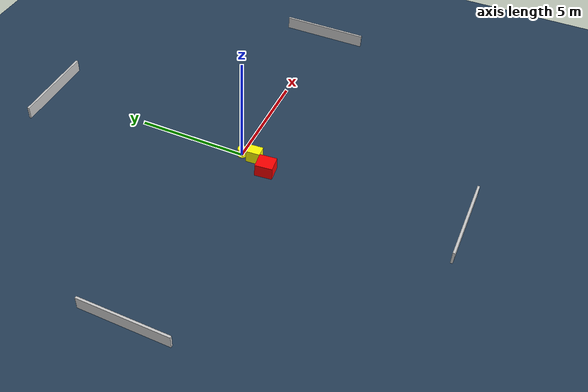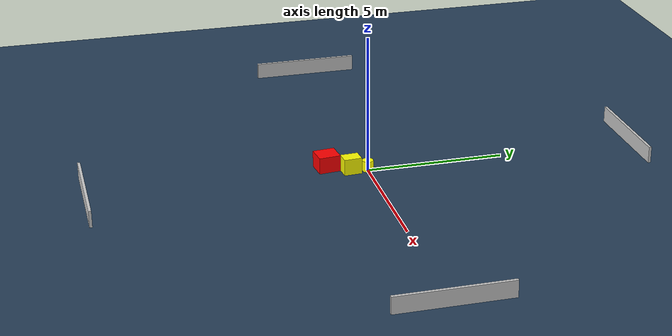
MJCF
<?xml version="1.0" ?>
<mujoco model="generated_environment">
  <option timestep="0.01" integrator="RK4" cone="elliptic"/>
  <default>
    <geom density="1"/>
  </default>
  <asset>
    <texture builtin="gradient" height="3072" name="skybox" rgb1="0.3 0.5 0.7" rgb2="0 0 0" type="skybox" width="512"/>
    <texture builtin="checker" height="300" name="groundplane" rgb1="0.2 0.3 0.4" rgb2="0.1 0.2 0.3" type="2d" width="300"/>
    <material name="groundplane" reflectance="0.2" texrepeat="5 5" texture="groundplane"/>
  </asset>
  <worldbody>
    <light dir="0 0 -1" directional="true" pos="0 0 1.5"/>
    <geom condim="3" friction="0.5 0.005 0.001" material="groundplane" name="floor" pos="0 0 0" size="0 0 0.05" type="plane"/>
    <body name="walls">
      <geom name="wall_1" condim="4" pos="-10.0 0.0 0.3" rgba="0.800000011920929 0.800000011920929 0.800000011920929 1.0" size="0.05 2.0 0.3" type="box"/>
      <geom name="wall_2" condim="4" pos="10.0 0.0 0.3" rgba="0.800000011920929 0.800000011920929 0.800000011920929 1.0" size="0.05 2.0 0.3" type="box"/>
      <geom name="wall_3" condim="4" pos="0.0 -10.0 0.3" rgba="0.800000011920929 0.800000011920929 0.800000011920929 1.0" size="2.0 0.05 0.3" type="box"/>
      <geom name="wall_4" condim="4" pos="0.0 10.0 0.3" rgba="0.800000011920929 0.800000011920929 0.800000011920929 1.0" size="2.0 0.05 0.3" type="box"/>
    </body>
    <body name="robot">
      <joint name="joint_x" type="slide" pos="0 0 0" axis="1 0 0"/>
      <joint name="joint_y" type="slide" pos="0 0 0" axis="0 1 0"/>
      <geom name="robot" type="cylinder" pos="0.0 0.0 0.2" size="0.2 0.2 0.0" mass="5.0" friction="1.0 0.005 0.0001" condim="4" rgba="1.0 1.0 0.0 1.0"/>
    </body>
    <body name="obstacle_1_movable">
      <geom name="obstacle_1_movable" condim="4" pos="-0.020348296403744512 -0.6108868575439712 0.3" euler="0 0 273.8765581607835" friction="0.0 0.005 0.001" rgba="1.0 1.0 0.0 1.0" size="0.32154691305255156 0.2486392056183083 0.3" type="box" mass="0.1"/>
      <joint type="free"/>
    </body>
    <body name="obstacle_2_static">
      <geom name="obstacle_2_static" condim="4" pos="-0.5152715323655713 -1.3814643033466247 0.3" euler="0 0 276.18705383764285" friction="0.0 0.005 0.001" rgba="1.0 0.0 0.0 1.0" size="0.3969402519226627 0.3657236491698256 0.3" type="box"/>
    </body>
  </worldbody>
  <actuator>
    <motor name="actuator_x" joint="joint_x" gear="1" ctrlrange="-1 1"/>
    <motor name="actuator_y" joint="joint_y" gear="1" ctrlrange="-1 1"/>
  </actuator>
</mujoco>
